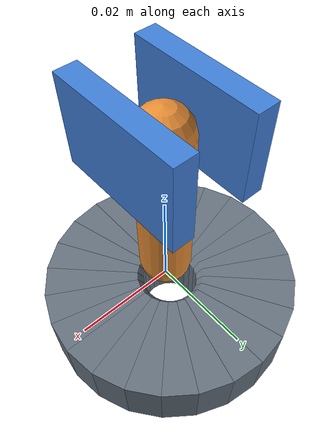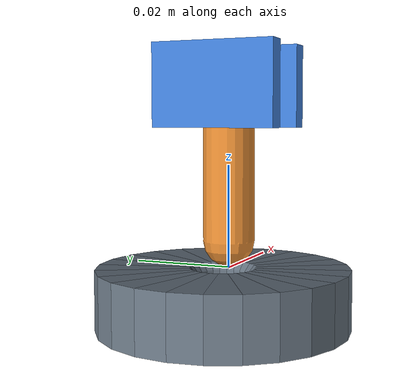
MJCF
<mujoco model="active_tactile_insertion"><compiler angle="radian" autolimits="true" /><option timestep="0.001" gravity="0 0 0" integrator="implicitfast" iterations="50" /><default><geom solref=".015 1" solimp=".9 .95 .0005" friction="0.261575223586527 .001 .0001" condim="3" /></default><asset><mesh name="ring0" vertex="0.025 0.0 0 0.0066 0.0 0 0.0054 0.0 -0.0015 0.0054 0.0 -0.012 0.025 0.0 -0.012 0.02414814565722671 0.0064704761275630185 0 0.006375110453507851 0.001708205697676637 0 0.005215999461960969 0.001397622843553612 -0.0015 0.005215999461960969 0.001397622843553612 -0.012 0.02414814565722671 0.0064704761275630185 -0.012" /><mesh name="ring1" vertex="0.02414814565722671 0.0064704761275630185 0 0.006375110453507851 0.001708205697676637 0 0.005215999461960969 0.001397622843553612 -0.0015 0.005215999461960969 0.001397622843553612 -0.012 0.02414814565722671 0.0064704761275630185 -0.012 0.02165063509461097 0.012499999999999999 0 0.0057157676649772955 0.0032999999999999995 0 0.00467653718043597 0.0026999999999999997 -0.0015 0.00467653718043597 0.0026999999999999997 -0.012 0.02165063509461097 0.012499999999999999 -0.012" /><mesh name="ring2" vertex="0.02165063509461097 0.012499999999999999 0 0.0057157676649772955 0.0032999999999999995 0 0.00467653718043597 0.0026999999999999997 -0.0015 0.00467653718043597 0.0026999999999999997 -0.012 0.02165063509461097 0.012499999999999999 -0.012 0.01767766952966369 0.017677669529663688 0 0.004666904755831214 0.004666904755831213 0 0.003818376618407357 0.0038183766184073566 -0.0015 0.003818376618407357 0.0038183766184073566 -0.012 0.01767766952966369 0.017677669529663688 -0.012" /><mesh name="ring3" vertex="0.01767766952966369 0.017677669529663688 0 0.004666904755831214 0.004666904755831213 0 0.003818376618407357 0.0038183766184073566 -0.0015 0.003818376618407357 0.0038183766184073566 -0.012 0.01767766952966369 0.017677669529663688 -0.012 0.012500000000000004 0.021650635094610966 0 0.003300000000000001 0.005715767664977295 0 0.0027000000000000006 0.004676537180435969 -0.0015 0.0027000000000000006 0.004676537180435969 -0.012 0.012500000000000004 0.021650635094610966 -0.012" /><mesh name="ring4" vertex="0.012500000000000004 0.021650635094610966 0 0.003300000000000001 0.005715767664977295 0 0.0027000000000000006 0.004676537180435969 -0.0015 0.0027000000000000006 0.004676537180435969 -0.012 0.012500000000000004 0.021650635094610966 -0.012 0.0064704761275630185 0.02414814565722671 0 0.001708205697676637 0.006375110453507851 0 0.001397622843553612 0.005215999461960969 -0.0015 0.001397622843553612 0.005215999461960969 -0.012 0.0064704761275630185 0.02414814565722671 -0.012" /><mesh name="ring5" vertex="0.0064704761275630185 0.02414814565722671 0 0.001708205697676637 0.006375110453507851 0 0.001397622843553612 0.005215999461960969 -0.0015 0.001397622843553612 0.005215999461960969 -0.012 0.0064704761275630185 0.02414814565722671 -0.012 1.5308084989341916e-18 0.025 0 4.0413344371862656e-19 0.0066 0 3.3065463576978538e-19 0.0054 -0.0015 3.3065463576978538e-19 0.0054 -0.012 1.5308084989341916e-18 0.025 -0.012" /><mesh name="ring6" vertex="1.5308084989341916e-18 0.025 0 4.0413344371862656e-19 0.0066 0 3.3065463576978538e-19 0.0054 -0.0015 3.3065463576978538e-19 0.0054 -0.012 1.5308084989341916e-18 0.025 -0.012 -0.006470476127563016 0.02414814565722671 0 -0.001708205697676636 0.006375110453507851 0 -0.0013976228435536116 0.005215999461960969 -0.0015 -0.0013976228435536116 0.005215999461960969 -0.012 -0.006470476127563016 0.02414814565722671 -0.012" /><mesh name="ring7" vertex="-0.006470476127563016 0.02414814565722671 0 -0.001708205697676636 0.006375110453507851 0 -0.0013976228435536116 0.005215999461960969 -0.0015 -0.0013976228435536116 0.005215999461960969 -0.012 -0.006470476127563016 0.02414814565722671 -0.012 -0.012499999999999995 0.02165063509461097 0 -0.0032999999999999987 0.0057157676649772955 0 -0.002699999999999999 0.00467653718043597 -0.0015 -0.002699999999999999 0.00467653718043597 -0.012 -0.012499999999999995 0.02165063509461097 -0.012" /><mesh name="ring8" vertex="-0.012499999999999995 0.02165063509461097 0 -0.0032999999999999987 0.0057157676649772955 0 -0.002699999999999999 0.00467653718043597 -0.0015 -0.002699999999999999 0.00467653718043597 -0.012 -0.012499999999999995 0.02165063509461097 -0.012 -0.017677669529663688 0.01767766952966369 0 -0.004666904755831213 0.004666904755831214 0 -0.0038183766184073566 0.003818376618407357 -0.0015 -0.0038183766184073566 0.003818376618407357 -0.012 -0.017677669529663688 0.01767766952966369 -0.012" /><mesh name="ring9" vertex="-0.017677669529663688 0.01767766952966369 0 -0.004666904755831213 0.004666904755831214 0 -0.0038183766184073566 0.003818376618407357 -0.0015 -0.0038183766184073566 0.003818376618407357 -0.012 -0.017677669529663688 0.01767766952966369 -0.012 -0.02165063509461097 0.012499999999999999 0 -0.0057157676649772955 0.0032999999999999995 0 -0.00467653718043597 0.0026999999999999997 -0.0015 -0.00467653718043597 0.0026999999999999997 -0.012 -0.02165063509461097 0.012499999999999999 -0.012" /><mesh name="ring10" vertex="-0.02165063509461097 0.012499999999999999 0 -0.0057157676649772955 0.0032999999999999995 0 -0.00467653718043597 0.0026999999999999997 -0.0015 -0.00467653718043597 0.0026999999999999997 -0.012 -0.02165063509461097 0.012499999999999999 -0.012 -0.024148145657226706 0.006470476127563025 0 -0.00637511045350785 0.0017082056976766386 0 -0.005215999461960968 0.0013976228435536135 -0.0015 -0.005215999461960968 0.0013976228435536135 -0.012 -0.024148145657226706 0.006470476127563025 -0.012" /><mesh name="ring11" vertex="-0.024148145657226706 0.006470476127563025 0 -0.00637511045350785 0.0017082056976766386 0 -0.005215999461960968 0.0013976228435536135 -0.0015 -0.005215999461960968 0.0013976228435536135 -0.012 -0.024148145657226706 0.006470476127563025 -0.012 -0.025 3.061616997868383e-18 0 -0.0066 8.082668874372531e-19 0 -0.0054 6.6130927153957075e-19 -0.0015 -0.0054 6.6130927153957075e-19 -0.012 -0.025 3.061616997868383e-18 -0.012" /><mesh name="ring12" vertex="-0.025 3.061616997868383e-18 0 -0.0066 8.082668874372531e-19 0 -0.0054 6.6130927153957075e-19 -0.0015 -0.0054 6.6130927153957075e-19 -0.012 -0.025 3.061616997868383e-18 -0.012 -0.02414814565722671 -0.00647047612756302 0 -0.006375110453507851 -0.0017082056976766371 0 -0.005215999461960969 -0.0013976228435536124 -0.0015 -0.005215999461960969 -0.0013976228435536124 -0.012 -0.02414814565722671 -0.00647047612756302 -0.012" /><mesh name="ring13" vertex="-0.02414814565722671 -0.00647047612756302 0 -0.006375110453507851 -0.0017082056976766371 0 -0.005215999461960969 -0.0013976228435536124 -0.0015 -0.005215999461960969 -0.0013976228435536124 -0.012 -0.02414814565722671 -0.00647047612756302 -0.012 -0.021650635094610973 -0.012499999999999994 0 -0.005715767664977296 -0.0032999999999999982 0 -0.00467653718043597 -0.002699999999999999 -0.0015 -0.00467653718043597 -0.002699999999999999 -0.012 -0.021650635094610973 -0.012499999999999994 -0.012" /><mesh name="ring14" vertex="-0.021650635094610973 -0.012499999999999994 0 -0.005715767664977296 -0.0032999999999999982 0 -0.00467653718043597 -0.002699999999999999 -0.0015 -0.00467653718043597 -0.002699999999999999 -0.012 -0.021650635094610973 -0.012499999999999994 -0.012 -0.0176776695296637 -0.017677669529663678 0 -0.0046669047558312166 -0.004666904755831211 0 -0.003818376618407359 -0.003818376618407355 -0.0015 -0.003818376618407359 -0.003818376618407355 -0.012 -0.0176776695296637 -0.017677669529663678 -0.012" /><mesh name="ring15" vertex="-0.0176776695296637 -0.017677669529663678 0 -0.0046669047558312166 -0.004666904755831211 0 -0.003818376618407359 -0.003818376618407355 -0.0015 -0.003818376618407359 -0.003818376618407355 -0.012 -0.0176776695296637 -0.017677669529663678 -0.012 -0.012500000000000011 -0.02165063509461096 0 -0.003300000000000003 -0.005715767664977293 0 -0.0027000000000000027 -0.004676537180435967 -0.0015 -0.0027000000000000027 -0.004676537180435967 -0.012 -0.012500000000000011 -0.02165063509461096 -0.012" /><mesh name="ring16" vertex="-0.012500000000000011 -0.02165063509461096 0 -0.003300000000000003 -0.005715767664977293 0 -0.0027000000000000027 -0.004676537180435967 -0.0015 -0.0027000000000000027 -0.004676537180435967 -0.012 -0.012500000000000011 -0.02165063509461096 -0.012 -0.006470476127563016 -0.02414814565722671 0 -0.001708205697676636 -0.006375110453507851 0 -0.0013976228435536116 -0.005215999461960969 -0.0015 -0.0013976228435536116 -0.005215999461960969 -0.012 -0.006470476127563016 -0.02414814565722671 -0.012" /><mesh name="ring17" vertex="-0.006470476127563016 -0.02414814565722671 0 -0.001708205697676636 -0.006375110453507851 0 -0.0013976228435536116 -0.005215999461960969 -0.0015 -0.0013976228435536116 -0.005215999461960969 -0.012 -0.006470476127563016 -0.02414814565722671 -0.012 -4.592425496802574e-18 -0.025 0 -1.2124003311558795e-18 -0.0066 0 -9.919639073093562e-19 -0.0054 -0.0015 -9.919639073093562e-19 -0.0054 -0.012 -4.592425496802574e-18 -0.025 -0.012" /><mesh name="ring18" vertex="-4.592425496802574e-18 -0.025 0 -1.2124003311558795e-18 -0.0066 0 -9.919639073093562e-19 -0.0054 -0.0015 -9.919639073093562e-19 -0.0054 -0.012 -4.592425496802574e-18 -0.025 -0.012 0.006470476127563008 -0.024148145657226713 0 0.0017082056976766339 -0.006375110453507852 0 0.0013976228435536096 -0.00521599946196097 -0.0015 0.0013976228435536096 -0.00521599946196097 -0.012 0.006470476127563008 -0.024148145657226713 -0.012" /><mesh name="ring19" vertex="0.006470476127563008 -0.024148145657226713 0 0.0017082056976766339 -0.006375110453507852 0 0.0013976228435536096 -0.00521599946196097 -0.0015 0.0013976228435536096 -0.00521599946196097 -0.012 0.006470476127563008 -0.024148145657226713 -0.012 0.012500000000000004 -0.021650635094610966 0 0.003300000000000001 -0.005715767664977295 0 0.0027000000000000006 -0.004676537180435969 -0.0015 0.0027000000000000006 -0.004676537180435969 -0.012 0.012500000000000004 -0.021650635094610966 -0.012" /><mesh name="ring20" vertex="0.012500000000000004 -0.021650635094610966 0 0.003300000000000001 -0.005715767664977295 0 0.0027000000000000006 -0.004676537180435969 -0.0015 0.0027000000000000006 -0.004676537180435969 -0.012 0.012500000000000004 -0.021650635094610966 -0.012 0.017677669529663684 -0.01767766952966369 0 0.004666904755831212 -0.004666904755831215 0 0.0038183766184073558 -0.0038183766184073575 -0.0015 0.0038183766184073558 -0.0038183766184073575 -0.012 0.017677669529663684 -0.01767766952966369 -0.012" /><mesh name="ring21" vertex="0.017677669529663684 -0.01767766952966369 0 0.004666904755831212 -0.004666904755831215 0 0.0038183766184073558 -0.0038183766184073575 -0.0015 0.0038183766184073558 -0.0038183766184073575 -0.012 0.017677669529663684 -0.01767766952966369 -0.012 0.02165063509461096 -0.012500000000000011 0 0.005715767664977293 -0.003300000000000003 0 0.004676537180435967 -0.0027000000000000027 -0.0015 0.004676537180435967 -0.0027000000000000027 -0.012 0.02165063509461096 -0.012500000000000011 -0.012" /><mesh name="ring22" vertex="0.02165063509461096 -0.012500000000000011 0 0.005715767664977293 -0.003300000000000003 0 0.004676537180435967 -0.0027000000000000027 -0.0015 0.004676537180435967 -0.0027000000000000027 -0.012 0.02165063509461096 -0.012500000000000011 -0.012 0.024148145657226703 -0.006470476127563039 0 0.006375110453507849 -0.0017082056976766423 0 0.0052159994619609676 -0.0013976228435536166 -0.0015 0.0052159994619609676 -0.0013976228435536166 -0.012 0.024148145657226703 -0.006470476127563039 -0.012" /><mesh name="ring23" vertex="0.024148145657226703 -0.006470476127563039 0 0.006375110453507849 -0.0017082056976766423 0 0.0052159994619609676 -0.0013976228435536166 -0.0015 0.0052159994619609676 -0.0013976228435536166 -0.012 0.024148145657226703 -0.006470476127563039 -0.012 0.025 -6.123233995736766e-18 0 0.0066 -1.6165337748745062e-18 0 0.0054 -1.3226185430791415e-18 -0.0015 0.0054 -1.3226185430791415e-18 -0.012 0.025 -6.123233995736766e-18 -0.012" /></asset><worldbody><light pos="0 -.1 .2" dir="0 0 -1" /><camera name="overview" pos=".065 -.085 .07" xyaxes=".8 .6 0 -.3 .4 .866" /><body name="hole" pos="-0.00021578358425975398 0.0011128383372600028 0"><geom name="hole0" type="mesh" mesh="ring0" contype="2" conaffinity="1" rgba=".4 .45 .5 1" /><geom name="hole1" type="mesh" mesh="ring1" contype="2" conaffinity="1" rgba=".4 .45 .5 1" /><geom name="hole2" type="mesh" mesh="ring2" contype="2" conaffinity="1" rgba=".4 .45 .5 1" /><geom name="hole3" type="mesh" mesh="ring3" contype="2" conaffinity="1" rgba=".4 .45 .5 1" /><geom name="hole4" type="mesh" mesh="ring4" contype="2" conaffinity="1" rgba=".4 .45 .5 1" /><geom name="hole5" type="mesh" mesh="ring5" contype="2" conaffinity="1" rgba=".4 .45 .5 1" /><geom name="hole6" type="mesh" mesh="ring6" contype="2" conaffinity="1" rgba=".4 .45 .5 1" /><geom name="hole7" type="mesh" mesh="ring7" contype="2" conaffinity="1" rgba=".4 .45 .5 1" /><geom name="hole8" type="mesh" mesh="ring8" contype="2" conaffinity="1" rgba=".4 .45 .5 1" /><geom name="hole9" type="mesh" mesh="ring9" contype="2" conaffinity="1" rgba=".4 .45 .5 1" /><geom name="hole10" type="mesh" mesh="ring10" contype="2" conaffinity="1" rgba=".4 .45 .5 1" /><geom name="hole11" type="mesh" mesh="ring11" contype="2" conaffinity="1" rgba=".4 .45 .5 1" /><geom name="hole12" type="mesh" mesh="ring12" contype="2" conaffinity="1" rgba=".4 .45 .5 1" /><geom name="hole13" type="mesh" mesh="ring13" contype="2" conaffinity="1" rgba=".4 .45 .5 1" /><geom name="hole14" type="mesh" mesh="ring14" contype="2" conaffinity="1" rgba=".4 .45 .5 1" /><geom name="hole15" type="mesh" mesh="ring15" contype="2" conaffinity="1" rgba=".4 .45 .5 1" /><geom name="hole16" type="mesh" mesh="ring16" contype="2" conaffinity="1" rgba=".4 .45 .5 1" /><geom name="hole17" type="mesh" mesh="ring17" contype="2" conaffinity="1" rgba=".4 .45 .5 1" /><geom name="hole18" type="mesh" mesh="ring18" contype="2" conaffinity="1" rgba=".4 .45 .5 1" /><geom name="hole19" type="mesh" mesh="ring19" contype="2" conaffinity="1" rgba=".4 .45 .5 1" /><geom name="hole20" type="mesh" mesh="ring20" contype="2" conaffinity="1" rgba=".4 .45 .5 1" /><geom name="hole21" type="mesh" mesh="ring21" contype="2" conaffinity="1" rgba=".4 .45 .5 1" /><geom name="hole22" type="mesh" mesh="ring22" contype="2" conaffinity="1" rgba=".4 .45 .5 1" /><geom name="hole23" type="mesh" mesh="ring23" contype="2" conaffinity="1" rgba=".4 .45 .5 1" /></body><body name="carriage" pos="0 0 .0353"><inertial pos="0 0 0" mass=".3" diaginertia=".0002 .0002 .0002" /><joint name="carriage_x" type="slide" axis="1.0 0.0 0.0" damping="0" range="-.02 .01" /><joint name="carriage_y" type="slide" axis="0.0 1.0 0.0" damping="0" range="-.02 .01" /><joint name="carriage_z" type="slide" axis="0.0 0.0 1.0" damping="80" range="-.02 .01" /><geom name="pad_left" type="box" pos="-0.00695 0 0" size=".002 .012 .008" mass=".01" contype="4" conaffinity="1" rgba=".25 .5 .85 1" /><site name="pad_left_site" pos="-0.005 0 0" size=".001" /><geom name="pad_right" type="box" pos="0.00695 0 0" size=".002 .012 .008" mass=".01" contype="4" conaffinity="1" rgba=".25 .5 .85 1" /><site name="pad_right_site" pos="0.005 0 0" size=".001" /><body name="peg" pos="0 0 -.015"><joint name="mount_x" type="slide" axis="1.0 0.0 0.0" stiffness="15000.0" damping="30.0" range="-.003 .003" /><joint name="mount_y" type="slide" axis="0.0 1.0 0.0" stiffness="15000.0" damping="30.0" range="-.003 .003" /><joint name="mount_z" type="slide" axis="0.0 0.0 1.0" stiffness="15000.0" damping="30.0" range="-.003 .003" /><geom name="shaft" type="capsule" size="0.005 .015" mass="0.06411014976438925" contype="1" conaffinity="6" rgba=".9 .55 .2 1" /><site name="tip" pos="0 0 -.02" size=".0005" /></body></body></worldbody><contact><pair geom1="shaft" geom2="pad_left" condim="3" /><pair geom1="shaft" geom2="pad_right" condim="3" /></contact><actuator><position joint="carriage_x" kp="9196.162562848112" kv="100.0" ctrlrange="-.01 .01" forcerange="-15 15" /><position joint="carriage_y" kp="9196.162562848112" kv="100.0" ctrlrange="-.01 .01" forcerange="-15 15" /><motor joint="carriage_z" ctrlrange="-20 20" /></actuator></mujoco>
